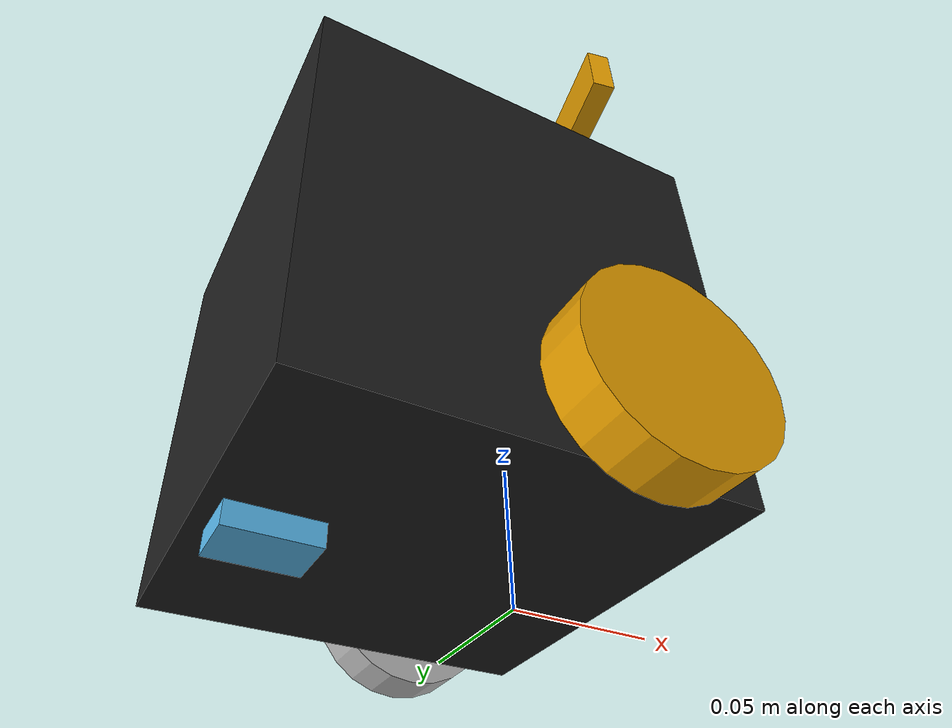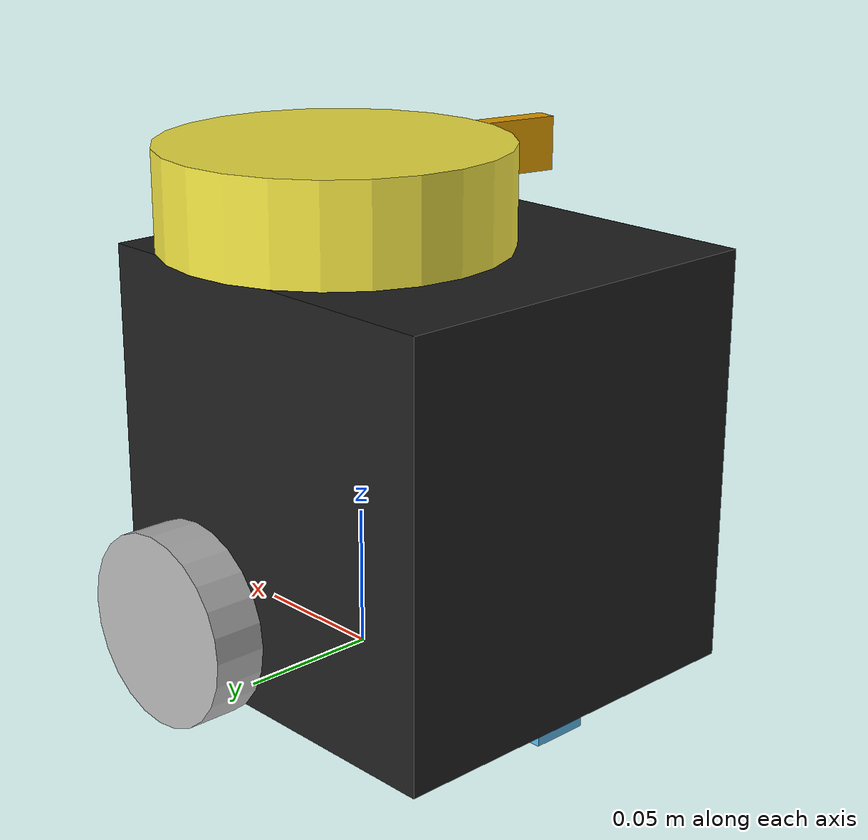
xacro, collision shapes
<?xml version="1.0" ?>
<robot name="louie" xmlns:xacro="http://ros.org/wiki/xacro">
  <xacro:include filename="$(find turtlebot3_description)/urdf/common_properties.xacro"/>
  <xacro:include filename="$(find turtlebot3_description)/urdf/turtlebot3_rsld.gazebo.xacro"/>
  <xacro:include filename="$(find realsense_gazebo_plugin)/urdf/realsense-RS200.macro.xacro"/>
  <xacro:arg name="prefix" default=""/>

  <xacro:realsense-rs200 prefix="$(arg prefix)" parent="$(arg prefix)base_link">
    <origin xyz=".009 -0.022 0.16" rpy="0 0 -0.2"/> <!--Adjusted to align with scan-->
  </xacro:realsense-rs200>

  <link name="$(arg prefix)base_footprint"/>

  <joint name="$(arg prefix)base_joint" type="fixed">
    <parent link="$(arg prefix)base_footprint"/>
    <child link="$(arg prefix)base_link"/>
    <origin xyz="0.0 0.0 0.010" rpy="0 0 0"/>
  </joint>

  <link name="$(arg prefix)base_link">
    <visual>
      <origin xyz="-0.032 0 0.0" rpy="0 0 0"/>
      <geometry>
        <mesh filename="package://turtlebot3_description/meshes/bases/burger_base.stl" scale="0.001 0.001 0.001"/>
      </geometry>
      <material name="light_black"/>
    </visual>

    <collision>
      <origin xyz="-0.032 0 0.070" rpy="0 0 0"/>
      <geometry>
        <box size="0.140 0.140 0.143"/>
      </geometry>
    </collision>

    <inertial>
      <origin xyz="0 0 0" rpy="0 0 0"/>
      <mass value="8.2573504e-01"/>
      <inertia ixx="2.2124416e-03" ixy="-1.2294101e-05" ixz="3.4938785e-05"
               iyy="2.1193702e-03" iyz="-5.0120904e-06"
               izz="2.0064271e-03" />
    </inertial>
  </link>

  <joint name="$(arg prefix)wheel_left_joint" type="continuous">
    <parent link="$(arg prefix)base_link"/>
    <child link="$(arg prefix)wheel_left_link"/>
    <origin xyz="0.0 0.08 0.023" rpy="-1.57 0 0"/>
    <axis xyz="0 0 1"/>
  </joint>

  <link name="$(arg prefix)wheel_left_link">
    <visual>
      <origin xyz="0 0 0" rpy="1.57 0 0"/>
      <geometry>
        <mesh filename="package://turtlebot3_description/meshes/wheels/left_tire.stl" scale="0.001 0.001 0.001"/>
      </geometry>
      <material name="dark"/>
    </visual>

    <collision>
      <origin xyz="0 0 0" rpy="0 0 0"/>
      <geometry>
        <cylinder length="0.018" radius="0.033"/>
      </geometry>
    </collision>

    <inertial>
      <origin xyz="0 0 0" />
      <mass value="2.8498940e-02" />
      <inertia ixx="1.1175580e-05" ixy="-4.2369783e-11" ixz="-5.9381719e-09"
               iyy="1.1192413e-05" iyz="-1.4400107e-11"
               izz="2.0712558e-05" />
      </inertial>
  </link>

  <joint name="$(arg prefix)wheel_right_joint" type="continuous">
    <parent link="$(arg prefix)base_link"/>
    <child link="$(arg prefix)wheel_right_link"/>
    <origin xyz="0.0 -0.080 0.023" rpy="-1.57 0 0"/>
    <axis xyz="0 0 1"/>
  </joint>

  <link name="$(arg prefix)wheel_right_link">
    <visual>
      <origin xyz="0 0 0" rpy="1.57 0 0"/>
      <geometry>
        <mesh filename="package://turtlebot3_description/meshes/wheels/right_tire.stl" scale="0.001 0.001 0.001"/>
      </geometry>
      <material name="dark"/>
    </visual>

    <collision>
      <origin xyz="0 0 0" rpy="0 0 0"/>
      <geometry>
        <cylinder length="0.018" radius="0.033"/>
      </geometry>
    </collision>

    <inertial>
      <origin xyz="0 0 0" />
      <mass value="2.8498940e-02" />
      <inertia ixx="1.1175580e-05" ixy="-4.2369783e-11" ixz="-5.9381719e-09"
               iyy="1.1192413e-05" iyz="-1.4400107e-11"
               izz="2.0712558e-05" />
      </inertial>
  </link>

  <joint name="$(arg prefix)caster_back_joint" type="fixed">
    <parent link="$(arg prefix)base_link"/>
    <child link="$(arg prefix)caster_back_link"/>
    <origin xyz="-0.081 0 -0.004" rpy="-1.57 0 0"/>
  </joint>

  <link name="$(arg prefix)caster_back_link">
    <collision>
      <origin xyz="0 0.001 0" rpy="0 0 0"/>
      <geometry>
        <box size="0.030 0.009 0.020"/>
      </geometry>
    </collision>

    <inertial>
      <origin xyz="0 0 0" />
      <mass value="0.005" />
      <inertia ixx="0.001" ixy="0.0" ixz="0.0"
               iyy="0.001" iyz="0.0"
               izz="0.001" />
    </inertial>
  </link>

  <joint name="$(arg prefix)imu_joint" type="fixed">
    <parent link="$(arg prefix)base_link"/>
    <child link="$(arg prefix)imu_link"/>
    <origin xyz="-0.032 0 0.068" rpy="0 0 0"/>
  </joint>

  <link name="$(arg prefix)imu_link"/>

    <joint name="$(arg prefix)scan_joint" type="fixed">
    <parent link="$(arg prefix)base_link"/>
    <child link="$(arg prefix)base_scan"/>
    <origin xyz="-0.02 0.04 0.172" rpy="0 0 3.14"/>
  </joint>

  <link name="$(arg prefix)base_scan">
    <visual>
      <origin xyz="0 0 0.0" rpy="0 0 3.14"/>
      <geometry>
        <mesh filename="package://turtlebot3_description/meshes/sensors/lds.stl" scale="0.001 0.001 0.001"/>
      </geometry>
      <material name="dark"/>
    </visual>

    <collision>
      <origin xyz="0.015 0 -0.0065" rpy="0 0 0"/>
      <geometry>
        <cylinder length="0.0315" radius="0.055"/>
      </geometry>
    </collision>

    <inertial>
      <mass value="0.114" />
      <origin xyz="0 0 0" />
      <inertia ixx="0.001" ixy="0.0" ixz="0.0"
               iyy="0.001" iyz="0.0"
               izz="0.001" />
    </inertial>
  </link>

  <gazebo>
    <plugin name="p3d_base_controller" filename="libgazebo_ros_p3d.so">
      <alwaysOn>true</alwaysOn>
      <updateRate>50.0</updateRate>
      <bodyName>base_link</bodyName>
      <topicName>ground_truth/state</topicName>
      <gaussianNoise>0.01</gaussianNoise>
      <frameName>world</frameName>
      <xyzOffset>0 0 0</xyzOffset>
      <rpyOffset>0 0 0</rpyOffset>
    </plugin>
  </gazebo>

</robot>

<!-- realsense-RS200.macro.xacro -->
<robot xmlns:xacro="http://ros.org/wiki/xacro">
<xacro:macro name="realsense-rs200" params="prefix parent *origin">
<xacro:arg name="rot" default="2"/>

    <!-- Camera link -->
    <link name="${prefix}rs200_camera">
        <visual>
            <origin rpy="0 0 0" xyz="0 0 0"/>
            <geometry>
                <mesh filename="package://realsense_gazebo_plugin/models/realsense_camera/meshes/realsense.dae"/>
            </geometry>
        </visual>
        <collision>
            <geometry>
                <box size="0.0078 0.130 0.0192"/>
            </geometry>
        </collision>
        <inertial>
            <mass value="0.0"/> <!--Commented out real mass for simulation: "0.0615752"/-->
            <origin rpy="0 0 0" xyz="0 0 0"/>
            <inertia ixx="9.108e-05"
                     ixy="0"
                     ixz="0"
                     iyy="2.51e-06"
                     iyz="0"
                     izz="8.931e-05"
            />
        </inertial>
    </link>

    <!-- Connect camera to parent frame-->
    <joint name="${prefix}realsense_joint" type="fixed">
        <parent link="${parent}"/>
        <child link="${prefix}rs200_camera"/>
        <xacro:insert_block name="origin"/>
    </joint>

    <!-- Virtual links representing the cameras positons and orientations-->
    <link name="${prefix}color" />
    <link name="${prefix}depth" />
    <link name="${prefix}ired1" />
    <link name="${prefix}ired2" />

    <!-- Joints positioning the virtual links with respect to the camera main link-->
    <joint name="${prefix}color_joint" type="fixed">
        <parent link="${prefix}rs200_camera" />
        <child link="${prefix}color" />
        <!-- The default position is change since in Rviz the cloud depth axis is Z not X-->
        <origin xyz="0 -0.046 0.004" rpy="${pi/2} ${pi} ${pi/2}"/>
    </joint>

    <joint name="${prefix}depth_joint" type="fixed">
        <parent link="${prefix}rs200_camera" />
        <child link="${prefix}depth" />
        <origin xyz="0 -0.03 0.004" rpy="0 0 0"/>
    </joint>

    <joint name="${prefix}ired1_joint" type="fixed">
        <parent link="${prefix}rs200_camera" />
        <child link="${prefix}ired1" />
        <origin xyz="0 -0.06 0.004" rpy="0 0 0"/>
    </joint>

    <joint name="${prefix}ired2_joint" type="fixed">
        <parent link="${prefix}rs200_camera" />
        <child link="${prefix}ired2" />
        <origin xyz="0 0.01 0.004" rpy="0 0 0"/>
    </joint>

</xacro:macro>
</robot>
